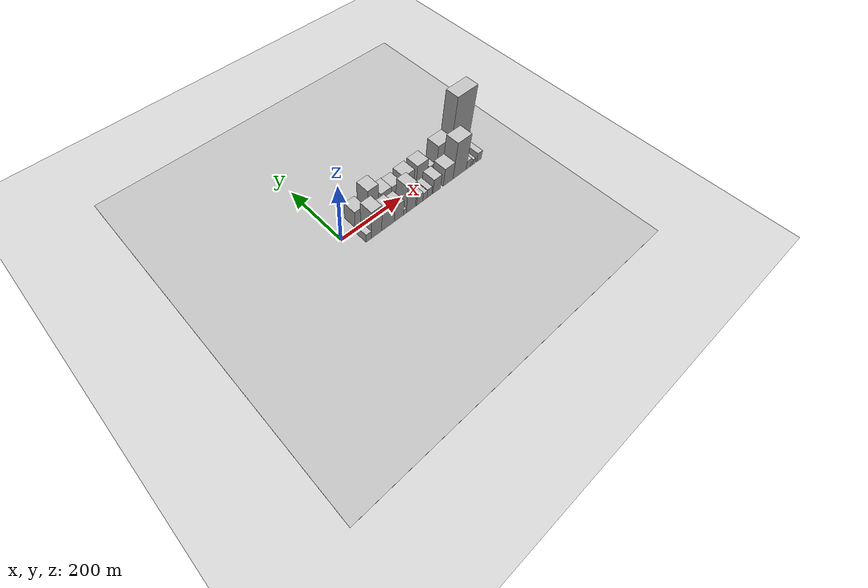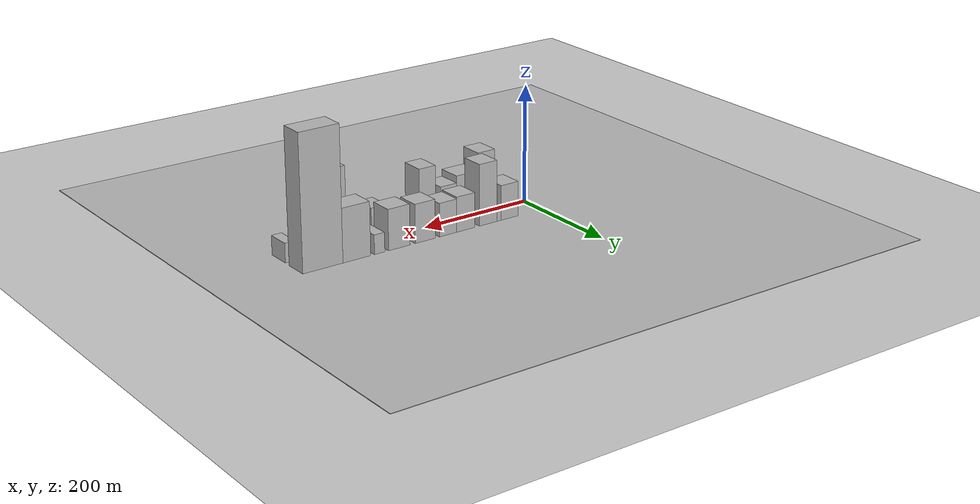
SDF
<?xml version="1.0" encoding="utf-8"?>

<sdf version="1.6">

   <world name="default">

      <gui fullscreen="0">

         <camera name="user_camera">

            <pose>-15 0 4.57585 0 0 0</pose>

            <view_controller>orbit</view_controller>

         </camera>

      </gui>

      <scene>

         <sky>

           <clouds>

             <speed>12</speed>

           </clouds>

         </sky>

         <ambient>0.4 0.4 0.4 1</ambient>

         <background>0.7 0.7 0.7 1</background>

         <shadows>1</shadows>

      </scene>

      <gravity>0 0 -9.8066</gravity>

      <magnetic_field>6e-06 2.3e-05 -4.2e-05</magnetic_field>

      <physics default="0" name="default_physics" type="ode">

         <ode>

            <solver>

               <type>quick</type>

               <iters>10</iters>

               <sor>1.0</sor>

               <use_dynamic_moi_rescaling>0</use_dynamic_moi_rescaling>

            </solver>

            <constraints>

               <cfm>0</cfm>

               <erp>0.2</erp>

               <contact_max_correcting_vel>100</contact_max_correcting_vel>

               <contact_surface_layer>0.001</contact_surface_layer>

            </constraints>

         </ode>

         <max_step_size>0.004</max_step_size>

         <real_time_factor>1</real_time_factor>

         <real_time_update_rate>250</real_time_update_rate>

      </physics>

      <light name="sun" type="directional">

         <cast_shadows>1</cast_shadows>

         <pose>0 0 10 0 0 0</pose>

         <diffuse>0.8 0.8 0.8 1</diffuse>

         <specular>0.2 0.2 0.2 1</specular>

         <attenuation>

            <range>1000</range>

            <constant>0.9</constant>

            <linear>0.01</linear>

            <quadratic>0.001</quadratic>

         </attenuation>

         <direction>-0.5 0.1 -0.9</direction>

      </light>

      <include>

         <name>ground_plane_1</name>

         <uri>model://HANNAS_ground_plane</uri>

         <pose>0 0 0  0 0 0</pose>

      </include>

      <include>

         <name>ground_plane_2</name>

         <uri>model://HANNAS_ground_plane</uri>

         <pose>100 0 0  0 0 0</pose>

      </include>

      <model name="building_1">

         <static>1</static>

         <pose frame="">66.0105 26.0000 0 0.000000 0.000000 1.570796</pose>

         <link name="link">

            <pose frame="">0 0 30.00 0 0 0</pose>

            <collision name="collision">

               <geometry>

                  <box>

                     <size>40.0000 34.0210 60.0000</size>

                  </box>

               </geometry>

               <max_contacts>10</max_contacts>

               <surface>

                  <contact>

                     <ode/>

                  </contact>

                  <bounce/>

                  <friction>

                     <torsional>

                        <ode/>

                     </torsional>

                     <ode/>

                  </friction>

               </surface>

            </collision>

            <visual name="visual">

               <cast_shadows>0</cast_shadows>

               <geometry>

                  <box>

                     <size>40.0000 34.0210 60.0000</size>

                  </box>

               </geometry>

               <material>

                  <script>

                     <uri>model://HANNAS_wall/materials/scripts</uri>

                     <uri>model://HANNAS_wall/materials/textures</uri>

                     <name>vrc/HANNAS_wall</name>

                  </script>

               </material>

            </visual>

            <self_collide>0</self_collide>

            <enable_wind>0</enable_wind>

            <kinematic>0</kinematic>

         </link>

      </model>

      <model name="building_2">

         <static>1</static>

         <pose frame="">87.2010 26.0000 0 0.000000 0.000000 1.570796</pose>

         <link name="link">

            <pose frame="">0 0 9.00 0 0 0</pose>

            <collision name="collision">

               <geometry>

                  <box>

                     <size>40.0000 8.3601 18.0000</size>

                  </box>

               </geometry>

               <max_contacts>10</max_contacts>

               <surface>

                  <contact>

                     <ode/>

                  </contact>

                  <bounce/>

                  <friction>

                     <torsional>

                        <ode/>

                     </torsional>

                     <ode/>

                  </friction>

               </surface>

            </collision>

            <visual name="visual">

               <cast_shadows>0</cast_shadows>

               <geometry>

                  <box>

                     <size>40.0000 8.3601 18.0000</size>

                  </box>

               </geometry>

               <material>

                  <script>

                     <uri>model://HANNAS_wall/materials/scripts</uri>

                     <uri>model://HANNAS_wall/materials/textures</uri>

                     <name>vrc/HANNAS_wall</name>

                  </script>

               </material>

            </visual>

            <self_collide>0</self_collide>

            <enable_wind>0</enable_wind>

            <kinematic>0</kinematic>

         </link>

      </model>

      <model name="building_3">

         <static>1</static>

         <pose frame="">108.7504 26.0000 0 0.000000 0.000000 1.570796</pose>

         <link name="link">

            <pose frame="">0 0 52.50 0 0 0</pose>

            <collision name="collision">

               <geometry>

                  <box>

                     <size>40.0000 34.7387 105.0000</size>

                  </box>

               </geometry>

               <max_contacts>10</max_contacts>

               <surface>

                  <contact>

                     <ode/>

                  </contact>

                  <bounce/>

                  <friction>

                     <torsional>

                        <ode/>

                     </torsional>

                     <ode/>

                  </friction>

               </surface>

            </collision>

            <visual name="visual">

               <cast_shadows>0</cast_shadows>

               <geometry>

                  <box>

                     <size>40.0000 34.7387 105.0000</size>

                  </box>

               </geometry>

               <material>

                  <script>

                     <uri>model://HANNAS_wall/materials/scripts</uri>

                     <uri>model://HANNAS_wall/materials/textures</uri>

                     <name>vrc/HANNAS_wall</name>

                  </script>

               </material>

            </visual>

            <self_collide>0</self_collide>

            <enable_wind>0</enable_wind>

            <kinematic>0</kinematic>

         </link>

      </model>

      <model name="building_4">

         <static>1</static>

         <pose frame="">152.8814 26.0000 0 0.000000 0.000000 1.570796</pose>

         <link name="link">

            <pose frame="">0 0 30.00 0 0 0</pose>

            <collision name="collision">

               <geometry>

                  <box>

                     <size>40.0000 35.5234 60.0000</size>

                  </box>

               </geometry>

               <max_contacts>10</max_contacts>

               <surface>

                  <contact>

                     <ode/>

                  </contact>

                  <bounce/>

                  <friction>

                     <torsional>

                        <ode/>

                     </torsional>

                     <ode/>

                  </friction>

               </surface>

            </collision>

            <visual name="visual">

               <cast_shadows>0</cast_shadows>

               <geometry>

                  <box>

                     <size>40.0000 35.5234 60.0000</size>

                  </box>

               </geometry>

               <material>

                  <script>

                     <uri>model://HANNAS_wall/materials/scripts</uri>

                     <uri>model://HANNAS_wall/materials/textures</uri>

                     <name>vrc/HANNAS_wall</name>

                  </script>

               </material>

            </visual>

            <self_collide>0</self_collide>

            <enable_wind>0</enable_wind>

            <kinematic>0</kinematic>

         </link>

      </model>

      <model name="building_5">

         <static>1</static>

         <pose frame="">187.3745 26.0000 0 0.000000 0.000000 1.570796</pose>

         <link name="link">

            <pose frame="">0 0 28.50 0 0 0</pose>

            <collision name="collision">

               <geometry>

                  <box>

                     <size>40.0000 33.4628 57.0000</size>

                  </box>

               </geometry>

               <max_contacts>10</max_contacts>

               <surface>

                  <contact>

                     <ode/>

                  </contact>

                  <bounce/>

                  <friction>

                     <torsional>

                        <ode/>

                     </torsional>

                     <ode/>

                  </friction>

               </surface>

            </collision>

            <visual name="visual">

               <cast_shadows>0</cast_shadows>

               <geometry>

                  <box>

                     <size>40.0000 33.4628 57.0000</size>

                  </box>

               </geometry>

               <material>

                  <script>

                     <uri>model://HANNAS_wall/materials/scripts</uri>

                     <uri>model://HANNAS_wall/materials/textures</uri>

                     <name>vrc/HANNAS_wall</name>

                  </script>

               </material>

            </visual>

            <self_collide>0</self_collide>

            <enable_wind>0</enable_wind>

            <kinematic>0</kinematic>

         </link>

      </model>

      <model name="building_6">

         <static>1</static>

         <pose frame="">231.2303 26.0000 0 0.000000 0.000000 1.570796</pose>

         <link name="link">

            <pose frame="">0 0 33.00 0 0 0</pose>

            <collision name="collision">

               <geometry>

                  <box>

                     <size>40.0000 38.2487 66.0000</size>

                  </box>

               </geometry>

               <max_contacts>10</max_contacts>

               <surface>

                  <contact>

                     <ode/>

                  </contact>

                  <bounce/>

                  <friction>

                     <torsional>

                        <ode/>

                     </torsional>

                     <ode/>

                  </friction>

               </surface>

            </collision>

            <visual name="visual">

               <cast_shadows>0</cast_shadows>

               <geometry>

                  <box>

                     <size>40.0000 38.2487 66.0000</size>

                  </box>

               </geometry>

               <material>

                  <script>

                     <uri>model://HANNAS_wall/materials/scripts</uri>

                     <uri>model://HANNAS_wall/materials/textures</uri>

                     <name>vrc/HANNAS_wall</name>

                  </script>

               </material>

            </visual>

            <self_collide>0</self_collide>

            <enable_wind>0</enable_wind>

            <kinematic>0</kinematic>

         </link>

      </model>

      <model name="building_7">

         <static>1</static>

         <pose frame="">280.3445 26.0000 0 0.000000 0.000000 1.570796</pose>

         <link name="link">

            <pose frame="">0 0 34.50 0 0 0</pose>

            <collision name="collision">

               <geometry>

                  <box>

                     <size>40.0000 39.9798 69.0000</size>

                  </box>

               </geometry>

               <max_contacts>10</max_contacts>

               <surface>

                  <contact>

                     <ode/>

                  </contact>

                  <bounce/>

                  <friction>

                     <torsional>

                        <ode/>

                     </torsional>

                     <ode/>

                  </friction>

               </surface>

            </collision>

            <visual name="visual">

               <cast_shadows>0</cast_shadows>

               <geometry>

                  <box>

                     <size>40.0000 39.9798 69.0000</size>

                  </box>

               </geometry>

               <material>

                  <script>

                     <uri>model://HANNAS_wall/materials/scripts</uri>

                     <uri>model://HANNAS_wall/materials/textures</uri>

                     <name>vrc/HANNAS_wall</name>

                  </script>

               </material>

            </visual>

            <self_collide>0</self_collide>

            <enable_wind>0</enable_wind>

            <kinematic>0</kinematic>

         </link>

      </model>

      <model name="building_8">

         <static>1</static>

         <pose frame="">316.9038 26.0000 0 0.000000 0.000000 1.570796</pose>

         <link name="link">

            <pose frame="">0 0 16.50 0 0 0</pose>

            <collision name="collision">

               <geometry>

                  <box>

                     <size>40.0000 19.1388 33.0000</size>

                  </box>

               </geometry>

               <max_contacts>10</max_contacts>

               <surface>

                  <contact>

                     <ode/>

                  </contact>

                  <bounce/>

                  <friction>

                     <torsional>

                        <ode/>

                     </torsional>

                     <ode/>

                  </friction>

               </surface>

            </collision>

            <visual name="visual">

               <cast_shadows>0</cast_shadows>

               <geometry>

                  <box>

                     <size>40.0000 19.1388 33.0000</size>

                  </box>

               </geometry>

               <material>

                  <script>

                     <uri>model://HANNAS_wall/materials/scripts</uri>

                     <uri>model://HANNAS_wall/materials/textures</uri>

                     <name>vrc/HANNAS_wall</name>

                  </script>

               </material>

            </visual>

            <self_collide>0</self_collide>

            <enable_wind>0</enable_wind>

            <kinematic>0</kinematic>

         </link>

      </model>

      <model name="building_9">

         <static>1</static>

         <pose frame="">358.6268 26.0000 0 0.000000 0.000000 1.570796</pose>

         <link name="link">

            <pose frame="">0 0 45.00 0 0 0</pose>

            <collision name="collision">

               <geometry>

                  <box>

                     <size>40.0000 50.3071 90.0000</size>

                  </box>

               </geometry>

               <max_contacts>10</max_contacts>

               <surface>

                  <contact>

                     <ode/>

                  </contact>

                  <bounce/>

                  <friction>

                     <torsional>

                        <ode/>

                     </torsional>

                     <ode/>

                  </friction>

               </surface>

            </collision>

            <visual name="visual">

               <cast_shadows>0</cast_shadows>

               <geometry>

                  <box>

                     <size>40.0000 50.3071 90.0000</size>

                  </box>

               </geometry>

               <material>

                  <script>

                     <uri>model://HANNAS_wall/materials/scripts</uri>

                     <uri>model://HANNAS_wall/materials/textures</uri>

                     <name>vrc/HANNAS_wall</name>

                  </script>

               </material>

            </visual>

            <self_collide>0</self_collide>

            <enable_wind>0</enable_wind>

            <kinematic>0</kinematic>

         </link>

      </model>

      <model name="building_10">

         <static>1</static>

         <pose frame="">419.4303 26.0000 0 0.000000 0.000000 1.570796</pose>

         <link name="link">

            <pose frame="">0 0 112.50 0 0 0</pose>

            <collision name="collision">

               <geometry>

                  <box>

                     <size>40.0000 71.2999 225.0000</size>

                  </box>

               </geometry>

               <max_contacts>10</max_contacts>

               <surface>

                  <contact>

                     <ode/>

                  </contact>

                  <bounce/>

                  <friction>

                     <torsional>

                        <ode/>

                     </torsional>

                     <ode/>

                  </friction>

               </surface>

            </collision>

            <visual name="visual">

               <cast_shadows>0</cast_shadows>

               <geometry>

                  <box>

                     <size>40.0000 71.2999 225.0000</size>

                  </box>

               </geometry>

               <material>

                  <script>

                     <uri>model://HANNAS_wall/materials/scripts</uri>

                     <uri>model://HANNAS_wall/materials/textures</uri>

                     <name>vrc/HANNAS_wall</name>

                  </script>

               </material>

            </visual>

            <self_collide>0</self_collide>

            <enable_wind>0</enable_wind>

            <kinematic>0</kinematic>

         </link>

      </model>

      <model name="building_11">

         <static>1</static>

         <pose frame="">48.7348 -26.0000 0 0.000000 0.000000 1.570796</pose>

         <link name="link">

            <pose frame="">0 0 15.00 0 0 0</pose>

            <collision name="collision">

               <geometry>

                  <box>

                     <size>40.0000 17.4696 30.0000</size>

                  </box>

               </geometry>

               <max_contacts>10</max_contacts>

               <surface>

                  <contact>

                     <ode/>

                  </contact>

                  <bounce/>

                  <friction>

                     <torsional>

                        <ode/>

                     </torsional>

                     <ode/>

                  </friction>

               </surface>

            </collision>

            <visual name="visual">

               <cast_shadows>0</cast_shadows>

               <geometry>

                  <box>

                     <size>40.0000 17.4696 30.0000</size>

                  </box>

               </geometry>

               <material>

                  <script>

                     <uri>model://HANNAS_wall/materials/scripts</uri>

                     <uri>model://HANNAS_wall/materials/textures</uri>

                     <name>vrc/HANNAS_wall</name>

                  </script>

               </material>

            </visual>

            <self_collide>0</self_collide>

            <enable_wind>0</enable_wind>

            <kinematic>0</kinematic>

         </link>

      </model>

      <model name="building_12">

         <static>1</static>

         <pose frame="">74.1374 -26.0000 0 0.000000 0.000000 1.570796</pose>

         <link name="link">

            <pose frame="">0 0 51.00 0 0 0</pose>

            <collision name="collision">

               <geometry>

                  <box>

                     <size>40.0000 33.3357 102.0000</size>

                  </box>

               </geometry>

               <max_contacts>10</max_contacts>

               <surface>

                  <contact>

                     <ode/>

                  </contact>

                  <bounce/>

                  <friction>

                     <torsional>

                        <ode/>

                     </torsional>

                     <ode/>

                  </friction>

               </surface>

            </collision>

            <visual name="visual">

               <cast_shadows>0</cast_shadows>

               <geometry>

                  <box>

                     <size>40.0000 33.3357 102.0000</size>

                  </box>

               </geometry>

               <material>

                  <script>

                     <uri>model://HANNAS_wall/materials/scripts</uri>

                     <uri>model://HANNAS_wall/materials/textures</uri>

                     <name>vrc/HANNAS_wall</name>

                  </script>

               </material>

            </visual>

            <self_collide>0</self_collide>

            <enable_wind>0</enable_wind>

            <kinematic>0</kinematic>

         </link>

      </model>

      <model name="building_13">

         <static>1</static>

         <pose frame="">112.3172 -26.0000 0 0.000000 0.000000 1.570796</pose>

         <link name="link">

            <pose frame="">0 0 36.00 0 0 0</pose>

            <collision name="collision">

               <geometry>

                  <box>

                     <size>40.0000 43.0237 72.0000</size>

                  </box>

               </geometry>

               <max_contacts>10</max_contacts>

               <surface>

                  <contact>

                     <ode/>

                  </contact>

                  <bounce/>

                  <friction>

                     <torsional>

                        <ode/>

                     </torsional>

                     <ode/>

                  </friction>

               </surface>

            </collision>

            <visual name="visual">

               <cast_shadows>0</cast_shadows>

               <geometry>

                  <box>

                     <size>40.0000 43.0237 72.0000</size>

                  </box>

               </geometry>

               <material>

                  <script>

                     <uri>model://HANNAS_wall/materials/scripts</uri>

                     <uri>model://HANNAS_wall/materials/textures</uri>

                     <name>vrc/HANNAS_wall</name>

                  </script>

               </material>

            </visual>

            <self_collide>0</self_collide>

            <enable_wind>0</enable_wind>

            <kinematic>0</kinematic>

         </link>

      </model>

      <model name="building_14">

         <static>1</static>

         <pose frame="">149.2730 -26.0000 0 0.000000 0.000000 1.570796</pose>

         <link name="link">

            <pose frame="">0 0 30.00 0 0 0</pose>

            <collision name="collision">

               <geometry>

                  <box>

                     <size>40.0000 30.8880 60.0000</size>

                  </box>

               </geometry>

               <max_contacts>10</max_contacts>

               <surface>

                  <contact>

                     <ode/>

                  </contact>

                  <bounce/>

                  <friction>

                     <torsional>

                        <ode/>

                     </torsional>

                     <ode/>

                  </friction>

               </surface>

            </collision>

            <visual name="visual">

               <cast_shadows>0</cast_shadows>

               <geometry>

                  <box>

                     <size>40.0000 30.8880 60.0000</size>

                  </box>

               </geometry>

               <material>

                  <script>

                     <uri>model://HANNAS_wall/materials/scripts</uri>

                     <uri>model://HANNAS_wall/materials/textures</uri>

                     <name>vrc/HANNAS_wall</name>

                  </script>

               </material>

            </visual>

            <self_collide>0</self_collide>

            <enable_wind>0</enable_wind>

            <kinematic>0</kinematic>

         </link>

      </model>

      <model name="building_15">

         <static>1</static>

         <pose frame="">169.7862 -26.0000 0 0.000000 0.000000 1.570796</pose>

         <link name="link">

            <pose frame="">0 0 10.50 0 0 0</pose>

            <collision name="collision">

               <geometry>

                  <box>

                     <size>40.0000 10.1384 21.0000</size>

                  </box>

               </geometry>

               <max_contacts>10</max_contacts>

               <surface>

                  <contact>

                     <ode/>

                  </contact>

                  <bounce/>

                  <friction>

                     <torsional>

                        <ode/>

                     </torsional>

                     <ode/>

                  </friction>

               </surface>

            </collision>

            <visual name="visual">

               <cast_shadows>0</cast_shadows>

               <geometry>

                  <box>

                     <size>40.0000 10.1384 21.0000</size>

                  </box>

               </geometry>

               <material>

                  <script>

                     <uri>model://HANNAS_wall/materials/scripts</uri>

                     <uri>model://HANNAS_wall/materials/textures</uri>

                     <name>vrc/HANNAS_wall</name>

                  </script>

               </material>

            </visual>

            <self_collide>0</self_collide>

            <enable_wind>0</enable_wind>

            <kinematic>0</kinematic>

         </link>

      </model>

      <model name="building_16">

         <static>1</static>

         <pose frame="">190.4837 -26.0000 0 0.000000 0.000000 1.570796</pose>

         <link name="link">

            <pose frame="">0 0 49.50 0 0 0</pose>

            <collision name="collision">

               <geometry>

                  <box>

                     <size>40.0000 31.2566 99.0000</size>

                  </box>

               </geometry>

               <max_contacts>10</max_contacts>

               <surface>

                  <contact>

                     <ode/>

                  </contact>

                  <bounce/>

                  <friction>

                     <torsional>

                        <ode/>

                     </torsional>

                     <ode/>

                  </friction>

               </surface>

            </collision>

            <visual name="visual">

               <cast_shadows>0</cast_shadows>

               <geometry>

                  <box>

                     <size>40.0000 31.2566 99.0000</size>

                  </box>

               </geometry>

               <material>

                  <script>

                     <uri>model://HANNAS_wall/materials/scripts</uri>

                     <uri>model://HANNAS_wall/materials/textures</uri>

                     <name>vrc/HANNAS_wall</name>

                  </script>

               </material>

            </visual>

            <self_collide>0</self_collide>

            <enable_wind>0</enable_wind>

            <kinematic>0</kinematic>

         </link>

      </model>

      <model name="building_17">

         <static>1</static>

         <pose frame="">221.8634 -26.0000 0 0.000000 0.000000 1.570796</pose>

         <link name="link">

            <pose frame="">0 0 18.00 0 0 0</pose>

            <collision name="collision">

               <geometry>

                  <box>

                     <size>40.0000 21.5027 36.0000</size>

                  </box>

               </geometry>

               <max_contacts>10</max_contacts>

               <surface>

                  <contact>

                     <ode/>

                  </contact>

                  <bounce/>

                  <friction>

                     <torsional>

                        <ode/>

                     </torsional>

                     <ode/>

                  </friction>

               </surface>

            </collision>

            <visual name="visual">

               <cast_shadows>0</cast_shadows>

               <geometry>

                  <box>

                     <size>40.0000 21.5027 36.0000</size>

                  </box>

               </geometry>

               <material>

                  <script>

                     <uri>model://HANNAS_wall/materials/scripts</uri>

                     <uri>model://HANNAS_wall/materials/textures</uri>

                     <name>vrc/HANNAS_wall</name>

                  </script>

               </material>

            </visual>

            <self_collide>0</self_collide>

            <enable_wind>0</enable_wind>

            <kinematic>0</kinematic>

         </link>

      </model>

      <model name="building_18">

         <static>1</static>

         <pose frame="">240.2632 -26.0000 0 0.000000 0.000000 1.570796</pose>

         <link name="link">

            <pose frame="">0 0 15.00 0 0 0</pose>

            <collision name="collision">

               <geometry>

                  <box>

                     <size>40.0000 15.2971 30.0000</size>

                  </box>

               </geometry>

               <max_contacts>10</max_contacts>

               <surface>

                  <contact>

                     <ode/>

                  </contact>

                  <bounce/>

                  <friction>

                     <torsional>

                        <ode/>

                     </torsional>

                     <ode/>

                  </friction>

               </surface>

            </collision>

            <visual name="visual">

               <cast_shadows>0</cast_shadows>

               <geometry>

                  <box>

                     <size>40.0000 15.2971 30.0000</size>

                  </box>

               </geometry>

               <material>

                  <script>

                     <uri>model://HANNAS_wall/materials/scripts</uri>

                     <uri>model://HANNAS_wall/materials/textures</uri>

                     <name>vrc/HANNAS_wall</name>

                  </script>

               </material>

            </visual>

            <self_collide>0</self_collide>

            <enable_wind>0</enable_wind>

            <kinematic>0</kinematic>

         </link>

      </model>

      <model name="building_19">

         <static>1</static>

         <pose frame="">256.4667 -26.0000 0 0.000000 0.000000 1.570796</pose>

         <link name="link">

            <pose frame="">0 0 16.50 0 0 0</pose>

            <collision name="collision">

               <geometry>

                  <box>

                     <size>40.0000 17.1098 33.0000</size>

                  </box>

               </geometry>

               <max_contacts>10</max_contacts>

               <surface>

                  <contact>

                     <ode/>

                  </contact>

                  <bounce/>

                  <friction>

                     <torsional>

                        <ode/>

                     </torsional>

                     <ode/>

                  </friction>

               </surface>

            </collision>

            <visual name="visual">

               <cast_shadows>0</cast_shadows>

               <geometry>

                  <box>

                     <size>40.0000 17.1098 33.0000</size>

                  </box>

               </geometry>

               <material>

                  <script>

                     <uri>model://HANNAS_wall/materials/scripts</uri>

                     <uri>model://HANNAS_wall/materials/textures</uri>

                     <name>vrc/HANNAS_wall</name>

                  </script>

               </material>

            </visual>

            <self_collide>0</self_collide>

            <enable_wind>0</enable_wind>

            <kinematic>0</kinematic>

         </link>

      </model>

      <model name="building_20">

         <static>1</static>

         <pose frame="">283.2064 -26.0000 0 0.000000 0.000000 1.570796</pose>

         <link name="link">

            <pose frame="">0 0 27.00 0 0 0</pose>

            <collision name="collision">

               <geometry>

                  <box>

                     <size>40.0000 28.3697 54.0000</size>

                  </box>

               </geometry>

               <max_contacts>10</max_contacts>

               <surface>

                  <contact>

                     <ode/>

                  </contact>

                  <bounce/>

                  <friction>

                     <torsional>

                        <ode/>

                     </torsional>

                     <ode/>

                  </friction>

               </surface>

            </collision>

            <visual name="visual">

               <cast_shadows>0</cast_shadows>

               <geometry>

                  <box>

                     <size>40.0000 28.3697 54.0000</size>

                  </box>

               </geometry>

               <material>

                  <script>

                     <uri>model://HANNAS_wall/materials/scripts</uri>

                     <uri>model://HANNAS_wall/materials/textures</uri>

                     <name>vrc/HANNAS_wall</name>

                  </script>

               </material>

            </visual>

            <self_collide>0</self_collide>

            <enable_wind>0</enable_wind>

            <kinematic>0</kinematic>

         </link>

      </model>

      <model name="building_21">

         <static>1</static>

         <pose frame="">325.6165 -26.0000 0 0.000000 0.000000 1.570796</pose>

         <link name="link">

            <pose frame="">0 0 33.00 0 0 0</pose>

            <collision name="collision">

               <geometry>

                  <box>

                     <size>40.0000 36.4504 66.0000</size>

                  </box>

               </geometry>

               <max_contacts>10</max_contacts>

               <surface>

                  <contact>

                     <ode/>

                  </contact>

                  <bounce/>

                  <friction>

                     <torsional>

                        <ode/>

                     </torsional>

                     <ode/>

                  </friction>

               </surface>

            </collision>

            <visual name="visual">

               <cast_shadows>0</cast_shadows>

               <geometry>

                  <box>

                     <size>40.0000 36.4504 66.0000</size>

                  </box>

               </geometry>

               <material>

                  <script>

                     <uri>model://HANNAS_wall/materials/scripts</uri>

                     <uri>model://HANNAS_wall/materials/textures</uri>

                     <name>vrc/HANNAS_wall</name>

                  </script>

               </material>

            </visual>

            <self_collide>0</self_collide>

            <enable_wind>0</enable_wind>

            <kinematic>0</kinematic>

         </link>

      </model>

      <model name="building_22">

         <static>1</static>

         <pose frame="">368.9607 -26.0000 0 0.000000 0.000000 1.570796</pose>

         <link name="link">

            <pose frame="">0 0 67.50 0 0 0</pose>

            <collision name="collision">

               <geometry>

                  <box>

                     <size>40.0000 50.2380 135.0000</size>

                  </box>

               </geometry>

               <max_contacts>10</max_contacts>

               <surface>

                  <contact>

                     <ode/>

                  </contact>

                  <bounce/>

                  <friction>

                     <torsional>

                        <ode/>

                     </torsional>

                     <ode/>

                  </friction>

               </surface>

            </collision>

            <visual name="visual">

               <cast_shadows>0</cast_shadows>

               <geometry>

                  <box>

                     <size>40.0000 50.2380 135.0000</size>

                  </box>

               </geometry>

               <material>

                  <script>

                     <uri>model://HANNAS_wall/materials/scripts</uri>

                     <uri>model://HANNAS_wall/materials/textures</uri>

                     <name>vrc/HANNAS_wall</name>

                  </script>

               </material>

            </visual>

            <self_collide>0</self_collide>

            <enable_wind>0</enable_wind>

            <kinematic>0</kinematic>

         </link>

      </model>

      <model name="building_23">

         <static>1</static>

         <pose frame="">402.9737 -26.0000 0 0.000000 0.000000 1.570796</pose>

         <link name="link">

            <pose frame="">0 0 16.50 0 0 0</pose>

            <collision name="collision">

               <geometry>

                  <box>

                     <size>40.0000 17.7880 33.0000</size>

                  </box>

               </geometry>

               <max_contacts>10</max_contacts>

               <surface>

                  <contact>

                     <ode/>

                  </contact>

                  <bounce/>

                  <friction>

                     <torsional>

                        <ode/>

                     </torsional>

                     <ode/>

                  </friction>

               </surface>

            </collision>

            <visual name="visual">

               <cast_shadows>0</cast_shadows>

               <geometry>

                  <box>

                     <size>40.0000 17.7880 33.0000</size>

                  </box>

               </geometry>

               <material>

                  <script>

                     <uri>model://HANNAS_wall/materials/scripts</uri>

                     <uri>model://HANNAS_wall/materials/textures</uri>

                     <name>vrc/HANNAS_wall</name>

                  </script>

               </material>

            </visual>

            <self_collide>0</self_collide>

            <enable_wind>0</enable_wind>

            <kinematic>0</kinematic>

         </link>

      </model>

      <model name="building_24">

         <static>1</static>

         <pose frame="">416.0546 -26.0000 0 0.000000 0.000000 1.570796</pose>

         <link name="link">

            <pose frame="">0 0 9.00 0 0 0</pose>

            <collision name="collision">

               <geometry>

                  <box>

                     <size>40.0000 8.3738 18.0000</size>

                  </box>

               </geometry>

               <max_contacts>10</max_contacts>

               <surface>

                  <contact>

                     <ode/>

                  </contact>

                  <bounce/>

                  <friction>

                     <torsional>

                        <ode/>

                     </torsional>

                     <ode/>

                  </friction>

               </surface>

            </collision>

            <visual name="visual">

               <cast_shadows>0</cast_shadows>

               <geometry>

                  <box>

                     <size>40.0000 8.3738 18.0000</size>

                  </box>

               </geometry>

               <material>

                  <script>

                     <uri>model://HANNAS_wall/materials/scripts</uri>

                     <uri>model://HANNAS_wall/materials/textures</uri>

                     <name>vrc/HANNAS_wall</name>

                  </script>

               </material>

            </visual>

            <self_collide>0</self_collide>

            <enable_wind>0</enable_wind>

            <kinematic>0</kinematic>

         </link>

      </model>

      <model name="building_25">

         <static>1</static>

         <pose frame="">424.7357 -26.0000 0 0.000000 0.000000 1.570796</pose>

         <link name="link">

            <pose frame="">0 0 10.50 0 0 0</pose>

            <collision name="collision">

               <geometry>

                  <box>

                     <size>40.0000 8.9884 21.0000</size>

                  </box>

               </geometry>

               <max_contacts>10</max_contacts>

               <surface>

                  <contact>

                     <ode/>

                  </contact>

                  <bounce/>

                  <friction>

                     <torsional>

                        <ode/>

                     </torsional>

                     <ode/>

                  </friction>

               </surface>

            </collision>

            <visual name="visual">

               <cast_shadows>0</cast_shadows>

               <geometry>

                  <box>

                     <size>40.0000 8.9884 21.0000</size>

                  </box>

               </geometry>

               <material>

                  <script>

                     <uri>model://HANNAS_wall/materials/scripts</uri>

                     <uri>model://HANNAS_wall/materials/textures</uri>

                     <name>vrc/HANNAS_wall</name>

                  </script>

               </material>

            </visual>

            <self_collide>0</self_collide>

            <enable_wind>0</enable_wind>

            <kinematic>0</kinematic>

         </link>

      </model>

      <model name="building_26">

         <static>1</static>

         <pose frame="">445.3314 -26.0000 0 0.000000 0.000000 1.570796</pose>

         <link name="link">

            <pose frame="">0 0 16.50 0 0 0</pose>

            <collision name="collision">

               <geometry>

                  <box>

                     <size>40.0000 18.2031 33.0000</size>

                  </box>

               </geometry>

               <max_contacts>10</max_contacts>

               <surface>

                  <contact>

                     <ode/>

                  </contact>

                  <bounce/>

                  <friction>

                     <torsional>

                        <ode/>

                     </torsional>

                     <ode/>

                  </friction>

               </surface>

            </collision>

            <visual name="visual">

               <cast_shadows>0</cast_shadows>

               <geometry>

                  <box>

                     <size>40.0000 18.2031 33.0000</size>

                  </box>

               </geometry>

               <material>

                  <script>

                     <uri>model://HANNAS_wall/materials/scripts</uri>

                     <uri>model://HANNAS_wall/materials/textures</uri>

                     <name>vrc/HANNAS_wall</name>

                  </script>

               </material>

            </visual>

            <self_collide>0</self_collide>

            <enable_wind>0</enable_wind>

            <kinematic>0</kinematic>

         </link>

      </model>

   </world>

</sdf>

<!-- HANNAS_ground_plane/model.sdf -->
<sdf version="1.4">
<model name="HANNAS_ground_plane">
  <static>true</static>
    <link name="link">
      <collision name="collision">
        <geometry>
          <plane>
            <normal>0 0 1</normal>
            <size>1000 1000</size>
          </plane>
        </geometry>
        <surface>
          <friction>
            <ode>
              <mu>100</mu>
              <mu2>50</mu2>
            </ode>
          </friction>
        </surface>
      </collision>
      <visual name="visual">
        <cast_shadows>false</cast_shadows>
        <geometry>
          <plane>
            <normal>0 0 1</normal>
            <size>1000 1000</size>
          </plane>
        </geometry>
        <material>
          <script>
            <uri>model://HANNAS_ground_plane/materials/scripts/HANNAS_ground_plane.material</uri>
	    <uri>model://HANNAS_ground_plane/materials/textures</uri>
            <name>HANNASGroundPlane/Image</name>
          </script>
        </material>
      </visual>
    </link>
  </model>
</sdf>
